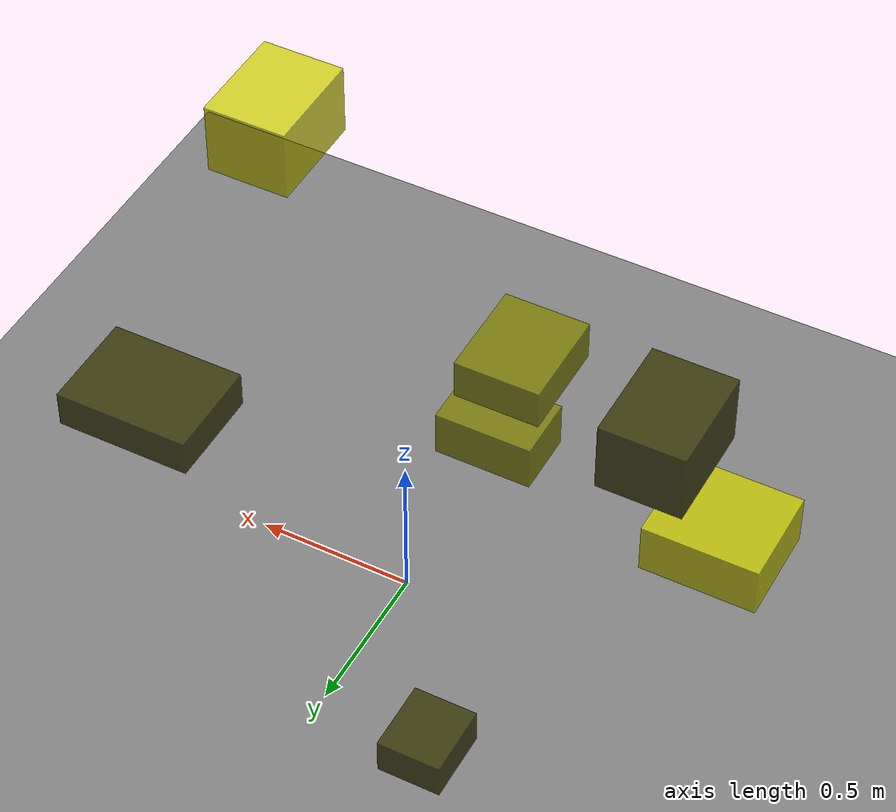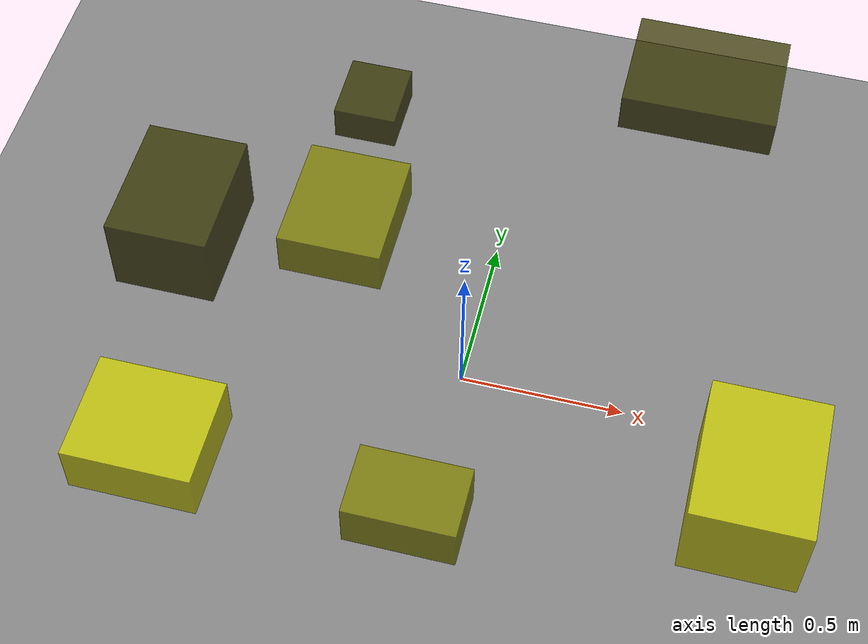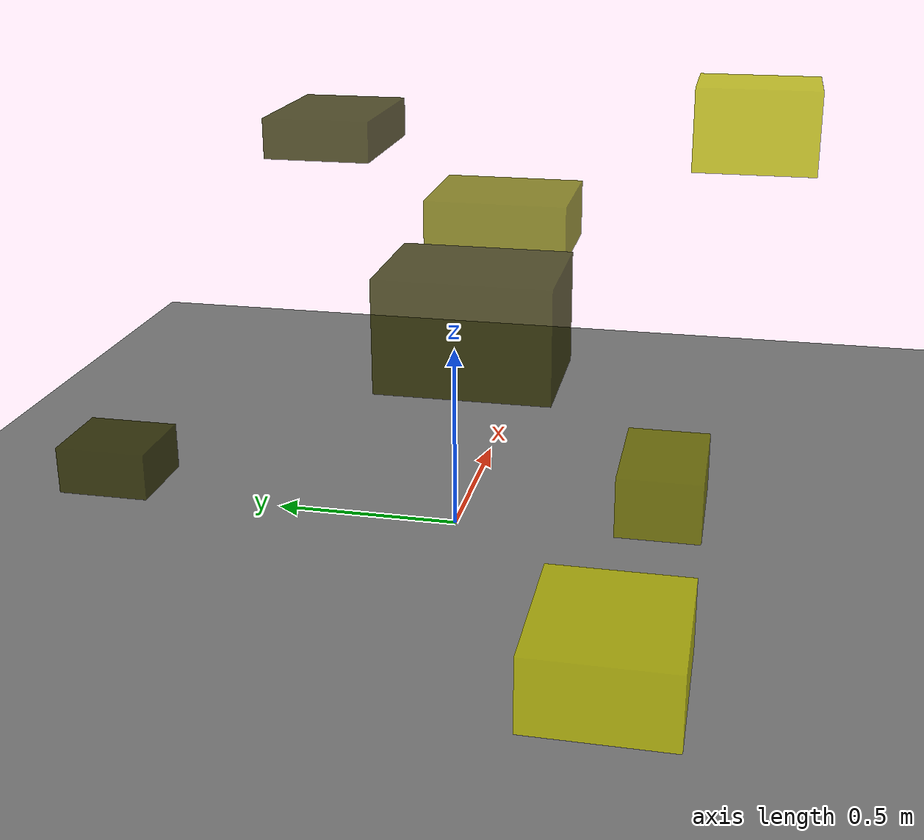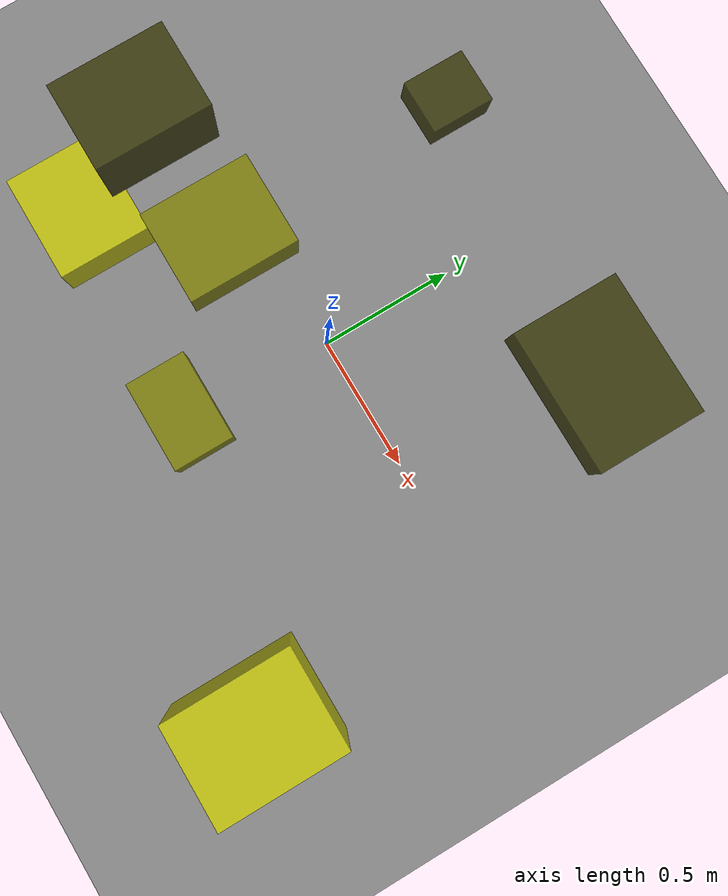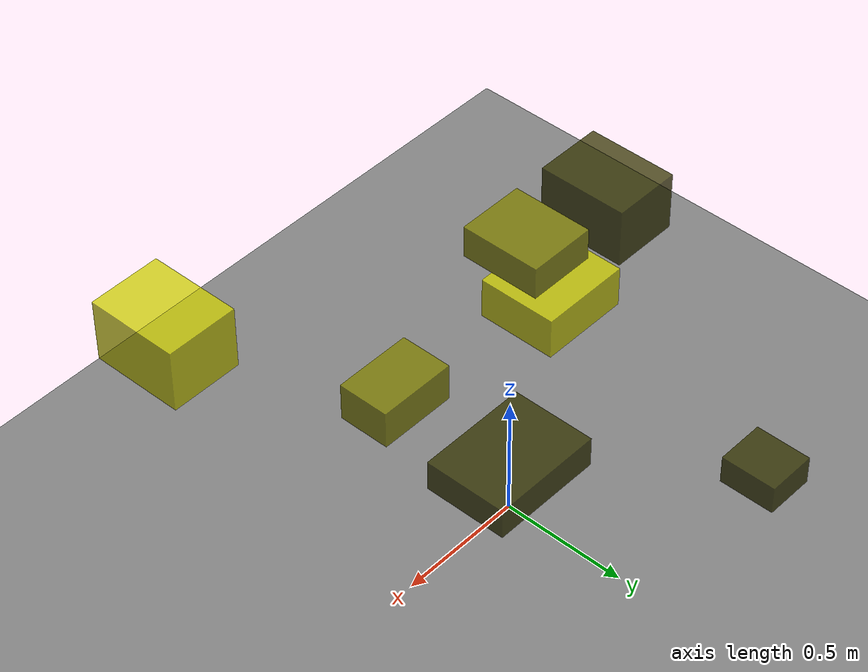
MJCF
<?xml version="1.0"?>
<mujoco model="obstacle_scene">
  <compiler angle="radian" coordinate="local"/>
  <option timestep="0.001" gravity="0 0 -9.81"/>

  <asset>
    <material name="obstacle_mat" rgba="0.8 0.8 0.0 0.8"/>
    <material name="ground_mat" rgba="0.5 0.5 0.5 1"/>
  </asset>

  <worldbody>
    <!-- Ground plane -->
    <geom name="ground" type="plane" size="3 3 0.1" material="ground_mat"/>

    <!-- Obstacles -->
    <body name="obstacle_0" pos="-0.732298 -0.205935 0.834244">
      <geom name="obs_0" type="box" size="0.135931 0.177859 0.117573" rgba="0.2 0.2 0.0 0.8"/>
    </body>
    <body name="obstacle_1" pos="-0.281785 -0.184253 0.933910">
      <geom name="obs_1" type="box" size="0.134088 0.159380 0.064080" rgba="0.5 0.5 0.0 0.8"/>
    </body>
    <body name="obstacle_2" pos="0.849562 -0.734624 0.962100">
      <geom name="obs_2" type="box" size="0.140292 0.179830 0.123345" rgba="0.8 0.8 0.0 0.8"/>
    </body>
    <body name="obstacle_3" pos="-0.468182 0.733133 0.335036">
      <geom name="obs_3" type="box" size="0.096888 0.110208 0.057303" rgba="0.2 0.2 0.0 0.8"/>
    </body>
    <body name="obstacle_4" pos="-0.023515 -0.558117 0.177590">
      <geom name="obs_4" type="box" size="0.164760 0.109279 0.081076" rgba="0.5 0.5 0.0 0.8"/>
    </body>
    <body name="obstacle_5" pos="-0.812030 -0.506987 0.151757">
      <geom name="obs_5" type="box" size="0.193490 0.168418 0.088812" rgba="0.8 0.8 0.0 0.8"/>
    </body>
    <body name="obstacle_6" pos="0.547509 0.469114 0.964101">
      <geom name="obs_6" type="box" size="0.205150 0.152595 0.057267" rgba="0.2 0.2 0.0 0.8"/>
    </body>
  </worldbody>
</mujoco>
